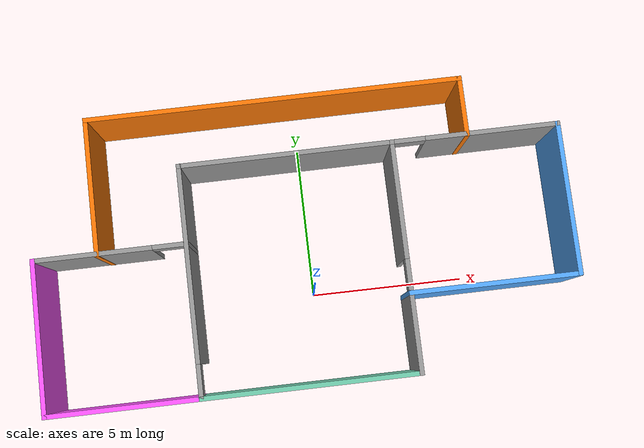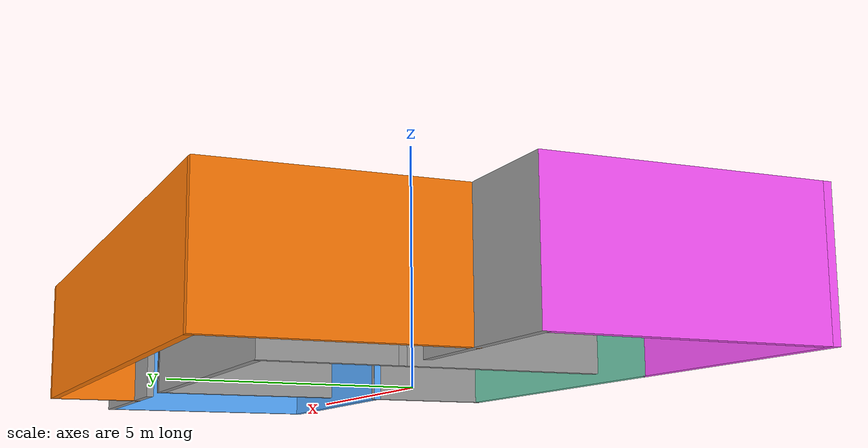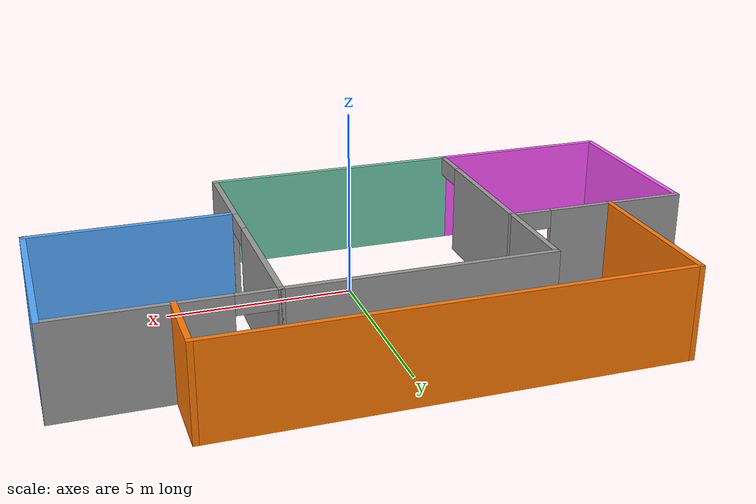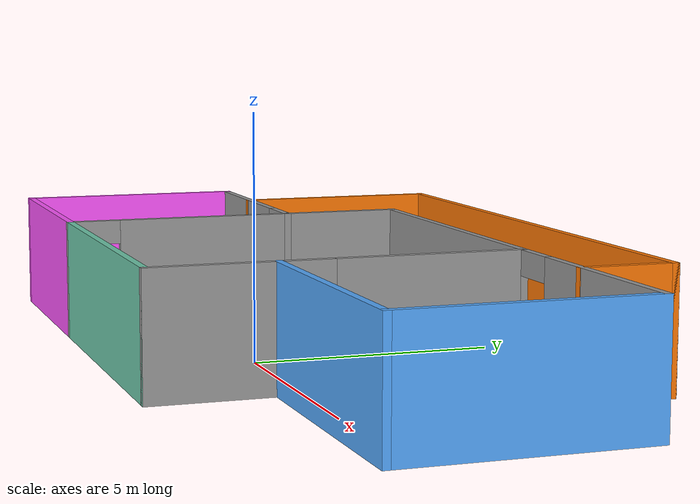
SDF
<?xml version='1.0'?>
<sdf version='1.6'>
  <model name='building'>
    <pose frame=''>-0.175 1.65386 0 0 -0 0</pose>
    <link name='Wall_0'>
      <pose frame=''>-3.675 -0.918855 0 0 -0 1.5708</pose>
      <visual name='Wall_0_Visual_0'>
        <pose frame=''>-3.67936 0 1.25 0 -0 0</pose>
        <geometry>
          <box>
            <size>0.14129 0.15 2.5</size>
          </box>
        </geometry>
        <material>
          <script>
            <uri>file://media/materials/scripts/gazebo.material</uri>
            <name>Gazebo/Grey</name>
          </script>
          <ambient>1 1 1 1</ambient>
        </material>
        <meta>
          <layer>0</layer>
        </meta>
      </visual>
      <collision name='Wall_0_Collision_0'>
        <geometry>
          <box>
            <size>0.14129 0.15 2.5</size>
          </box>
        </geometry>
        <pose frame=''>-3.67936 0 1.25 0 -0 0</pose>
      </collision>
      <visual name='Wall_0_Visual_1'>
        <pose frame=''>0.570645 0 1.25 0 -0 0</pose>
        <geometry>
          <box>
            <size>6.35871 0.15 2.5</size>
          </box>
        </geometry>
        <material>
          <script>
            <uri>file://media/materials/scripts/gazebo.material</uri>
            <name>Gazebo/Grey</name>
          </script>
          <ambient>1 1 1 1</ambient>
        </material>
        <meta>
          <layer>0</layer>
        </meta>
      </visual>
      <collision name='Wall_0_Collision_1'>
        <geometry>
          <box>
            <size>6.35871 0.15 2.5</size>
          </box>
        </geometry>
        <pose frame=''>0.570645 0 1.25 0 -0 0</pose>
      </collision>
      <visual name='Wall_0_Visual_2'>
        <pose frame=''>-3.10871 0 2.25 0 -0 0</pose>
        <geometry>
          <box>
            <size>1 0.15 0.5</size>
          </box>
        </geometry>
        <material>
          <script>
            <uri>file://media/materials/scripts/gazebo.material</uri>
            <name>Gazebo/Grey</name>
          </script>
          <ambient>1 1 1 1</ambient>
        </material>
        <meta>
          <layer>0</layer>
        </meta>
      </visual>
      <collision name='Wall_0_Collision_2'>
        <geometry>
          <box>
            <size>1 0.15 0.5</size>
          </box>
        </geometry>
        <pose frame=''>-3.10871 0 2.25 0 -0 0</pose>
      </collision>
    </link>
    <link name='Wall_1'>
      <collision name='Wall_1_Collision'>
        <geometry>
          <box>
            <size>7 0.15 2.5</size>
          </box>
        </geometry>
        <pose frame=''>0 0 1.25 0 -0 0</pose>
      </collision>
      <visual name='Wall_1_Visual'>
        <pose frame=''>0 0 1.25 0 -0 0</pose>
        <geometry>
          <box>
            <size>7 0.15 2.5</size>
          </box>
        </geometry>
        <material>
          <script>
            <uri>file://media/materials/scripts/gazebo.material</uri>
            <name>Gazebo/Grey</name>
          </script>
          <ambient>1 1 1 1</ambient>
        </material>
        <meta>
          <layer>0</layer>
        </meta>
      </visual>
      <pose frame=''>-0.25 2.75615 0 0 -0 0</pose>
    </link>
    <link name='Wall_10'>
      <collision name='Wall_10_Collision'>
        <geometry>
          <box>
            <size>5 0.15 2.5</size>
          </box>
        </geometry>
        <pose frame=''>0 0 1.25 0 -0 0</pose>
      </collision>
      <visual name='Wall_10_Visual'>
        <pose frame=''>0 0 1.25 0 -0 0</pose>
        <geometry>
          <box>
            <size>5 0.15 2.5</size>
          </box>
        </geometry>
        <material>
          <script>
            <uri>file://media/materials/scripts/gazebo.material</uri>
            <name>Gazebo/Grey</name>
          </script>
          <ambient>1 0.333333 1 1</ambient>
        </material>
        <meta>
          <layer>0</layer>
        </meta>
      </visual>
      <pose frame=''>-6.1 -4.59385 0 0 -0 3.14159</pose>
    </link>
    <link name='Wall_11'>
      <collision name='Wall_11_Collision'>
        <geometry>
          <box>
            <size>5 0.15 2.5</size>
          </box>
        </geometry>
        <pose frame=''>0 0 1.25 0 -0 0</pose>
      </collision>
      <visual name='Wall_11_Visual'>
        <pose frame=''>0 0 1.25 0 -0 0</pose>
        <geometry>
          <box>
            <size>5 0.15 2.5</size>
          </box>
        </geometry>
        <material>
          <script>
            <uri>file://media/materials/scripts/gazebo.material</uri>
            <name>Gazebo/Grey</name>
          </script>
          <ambient>1 0.333333 1 1</ambient>
        </material>
        <meta>
          <layer>0</layer>
        </meta>
      </visual>
      <pose frame=''>-8.525 -2.16886 0 0 -0 1.5708</pose>
    </link>
    <link name='Wall_12'>
      <pose frame=''>-6.1 0.256145 0 0 -0 0</pose>
      <visual name='Wall_12_Visual_0'>
        <pose frame=''>-0.57556 0 1.25 0 -0 0</pose>
        <geometry>
          <box>
            <size>3.84888 0.15 2.5</size>
          </box>
        </geometry>
        <material>
          <script>
            <uri>file://media/materials/scripts/gazebo.material</uri>
            <name>Gazebo/Grey</name>
          </script>
          <ambient>1 1 1 1</ambient>
        </material>
        <meta>
          <layer>0</layer>
        </meta>
      </visual>
      <collision name='Wall_12_Collision_0'>
        <geometry>
          <box>
            <size>3.84888 0.15 2.5</size>
          </box>
        </geometry>
        <pose frame=''>-0.57556 0 1.25 0 -0 0</pose>
      </collision>
      <visual name='Wall_12_Visual_1'>
        <pose frame=''>2.42444 0 1.25 0 -0 0</pose>
        <geometry>
          <box>
            <size>0.151119 0.15 2.5</size>
          </box>
        </geometry>
        <material>
          <script>
            <uri>file://media/materials/scripts/gazebo.material</uri>
            <name>Gazebo/Grey</name>
          </script>
          <ambient>1 1 1 1</ambient>
        </material>
        <meta>
          <layer>0</layer>
        </meta>
      </visual>
      <collision name='Wall_12_Collision_1'>
        <geometry>
          <box>
            <size>0.151119 0.15 2.5</size>
          </box>
        </geometry>
        <pose frame=''>2.42444 0 1.25 0 -0 0</pose>
      </collision>
      <visual name='Wall_12_Visual_2'>
        <pose frame=''>1.84888 0 2.25 0 -0 0</pose>
        <geometry>
          <box>
            <size>1 0.15 0.5</size>
          </box>
        </geometry>
        <material>
          <script>
            <uri>file://media/materials/scripts/gazebo.material</uri>
            <name>Gazebo/Grey</name>
          </script>
          <ambient>1 1 1 1</ambient>
        </material>
        <meta>
          <layer>0</layer>
        </meta>
      </visual>
      <collision name='Wall_12_Collision_2'>
        <geometry>
          <box>
            <size>1 0.15 0.5</size>
          </box>
        </geometry>
        <pose frame=''>1.84888 0 2.25 0 -0 0</pose>
      </collision>
    </link>
    <link name='Wall_14'>
      <collision name='Wall_14_Collision'>
        <geometry>
          <box>
            <size>4.5 0.15 2.5</size>
          </box>
        </geometry>
        <pose frame=''>0 0 1.25 0 -0 0</pose>
      </collision>
      <visual name='Wall_14_Visual'>
        <pose frame=''>0 0 1.25 0 -0 0</pose>
        <geometry>
          <box>
            <size>4.5 0.15 2.5</size>
          </box>
        </geometry>
        <material>
          <script>
            <uri>file://media/materials/scripts/gazebo.material</uri>
            <name>Gazebo/Grey</name>
          </script>
          <ambient>0.996078 0.47451 0.0196078 1</ambient>
        </material>
        <meta>
          <layer>0</layer>
        </meta>
      </visual>
      <pose frame=''>-6.50181 2.41886 0 0 -0 1.5708</pose>
    </link>
    <link name='Wall_15'>
      <collision name='Wall_15_Collision'>
        <geometry>
          <box>
            <size>12.25 0.15 2.5</size>
          </box>
        </geometry>
        <pose frame=''>0 0 1.25 0 -0 0</pose>
      </collision>
      <visual name='Wall_15_Visual'>
        <pose frame=''>0 0 1.25 0 -0 0</pose>
        <geometry>
          <box>
            <size>12.25 0.15 2.5</size>
          </box>
        </geometry>
        <material>
          <script>
            <uri>file://media/materials/scripts/gazebo.material</uri>
            <name>Gazebo/Grey</name>
          </script>
          <ambient>0.996078 0.47451 0.0196078 1</ambient>
        </material>
        <meta>
          <layer>0</layer>
        </meta>
      </visual>
      <pose frame=''>-0.451808 4.59385 0 0 -0 0</pose>
    </link>
    <link name='Wall_16'>
      <collision name='Wall_16_Collision'>
        <geometry>
          <box>
            <size>2 0.15 2.5</size>
          </box>
        </geometry>
        <pose frame=''>0 0 1.25 0 -0 0</pose>
      </collision>
      <visual name='Wall_16_Visual'>
        <pose frame=''>0 0 1.25 0 -0 0</pose>
        <geometry>
          <box>
            <size>2 0.15 2.5</size>
          </box>
        </geometry>
        <material>
          <script>
            <uri>file://media/materials/scripts/gazebo.material</uri>
            <name>Gazebo/Grey</name>
          </script>
          <ambient>0.996078 0.47451 0.0196078 1</ambient>
        </material>
        <meta>
          <layer>0</layer>
        </meta>
      </visual>
      <pose frame=''>5.59819 3.66886 0 0 0 -1.5708</pose>
    </link>
    <link name='Wall_3'>
      <collision name='Wall_3_Collision'>
        <geometry>
          <box>
            <size>7 0.15 2.5</size>
          </box>
        </geometry>
        <pose frame=''>0 0 1.25 0 -0 0</pose>
      </collision>
      <visual name='Wall_3_Visual'>
        <pose frame=''>0 0 1.25 0 -0 0</pose>
        <geometry>
          <box>
            <size>7 0.15 2.5</size>
          </box>
        </geometry>
        <material>
          <script>
            <uri>file://media/materials/scripts/gazebo.material</uri>
            <name>Gazebo/Grey</name>
          </script>
          <ambient>0.435294 0.796078 0.67451 1</ambient>
        </material>
        <meta>
          <layer>0</layer>
        </meta>
      </visual>
      <pose frame=''>-0.25 -4.59385 0 0 -0 0</pose>
    </link>
    <link name='Wall_4'>
      <pose frame=''>3.175 -0.918855 0 0 -0 1.5708</pose>
      <visual name='Wall_4_Visual_0'>
        <pose frame=''>-2.42209 0 1.25 0 -0 0</pose>
        <geometry>
          <box>
            <size>2.65581 0.15 2.5</size>
          </box>
        </geometry>
        <material>
          <script>
            <uri>file://media/materials/scripts/gazebo.material</uri>
            <name>Gazebo/Grey</name>
          </script>
          <ambient>1 1 1 1</ambient>
        </material>
        <meta>
          <layer>0</layer>
        </meta>
      </visual>
      <collision name='Wall_4_Collision_0'>
        <geometry>
          <box>
            <size>2.65581 0.15 2.5</size>
          </box>
        </geometry>
        <pose frame=''>-2.42209 0 1.25 0 -0 0</pose>
      </collision>
      <visual name='Wall_4_Visual_1'>
        <pose frame=''>1.82791 0 1.25 0 -0 0</pose>
        <geometry>
          <box>
            <size>3.84419 0.15 2.5</size>
          </box>
        </geometry>
        <material>
          <script>
            <uri>file://media/materials/scripts/gazebo.material</uri>
            <name>Gazebo/Grey</name>
          </script>
          <ambient>1 1 1 1</ambient>
        </material>
        <meta>
          <layer>0</layer>
        </meta>
      </visual>
      <collision name='Wall_4_Collision_1'>
        <geometry>
          <box>
            <size>3.84419 0.15 2.5</size>
          </box>
        </geometry>
        <pose frame=''>1.82791 0 1.25 0 -0 0</pose>
      </collision>
      <visual name='Wall_4_Visual_2'>
        <pose frame=''>-0.594186 0 2.25 0 -0 0</pose>
        <geometry>
          <box>
            <size>1 0.15 0.5</size>
          </box>
        </geometry>
        <material>
          <script>
            <uri>file://media/materials/scripts/gazebo.material</uri>
            <name>Gazebo/Grey</name>
          </script>
          <ambient>1 1 1 1</ambient>
        </material>
        <meta>
          <layer>0</layer>
        </meta>
      </visual>
      <collision name='Wall_4_Collision_2'>
        <geometry>
          <box>
            <size>1 0.15 0.5</size>
          </box>
        </geometry>
        <pose frame=''>-0.594186 0 2.25 0 -0 0</pose>
      </collision>
    </link>
    <link name='Wall_6'>
      <pose frame=''>5.85 2.75615 0 0 -0 0</pose>
      <visual name='Wall_6_Visual_0'>
        <pose frame=''>-2.67535 0 1.25 0 -0 0</pose>
        <geometry>
          <box>
            <size>0.149302 0.15 2.5</size>
          </box>
        </geometry>
        <material>
          <script>
            <uri>file://media/materials/scripts/gazebo.material</uri>
            <name>Gazebo/Grey</name>
          </script>
          <ambient>1 1 1 1</ambient>
        </material>
        <meta>
          <layer>0</layer>
        </meta>
      </visual>
      <collision name='Wall_6_Collision_0'>
        <geometry>
          <box>
            <size>0.149302 0.15 2.5</size>
          </box>
        </geometry>
        <pose frame=''>-2.67535 0 1.25 0 -0 0</pose>
      </collision>
      <visual name='Wall_6_Visual_1'>
        <pose frame=''>0.574651 0 1.25 0 -0 0</pose>
        <geometry>
          <box>
            <size>4.3507 0.15 2.5</size>
          </box>
        </geometry>
        <material>
          <script>
            <uri>file://media/materials/scripts/gazebo.material</uri>
            <name>Gazebo/Grey</name>
          </script>
          <ambient>1 1 1 1</ambient>
        </material>
        <meta>
          <layer>0</layer>
        </meta>
      </visual>
      <collision name='Wall_6_Collision_1'>
        <geometry>
          <box>
            <size>4.3507 0.15 2.5</size>
          </box>
        </geometry>
        <pose frame=''>0.574651 0 1.25 0 -0 0</pose>
      </collision>
      <visual name='Wall_6_Visual_2'>
        <pose frame=''>-2.1007 0 2.25 0 -0 0</pose>
        <geometry>
          <box>
            <size>1 0.15 0.5</size>
          </box>
        </geometry>
        <material>
          <script>
            <uri>file://media/materials/scripts/gazebo.material</uri>
            <name>Gazebo/Grey</name>
          </script>
          <ambient>1 1 1 1</ambient>
        </material>
        <meta>
          <layer>0</layer>
        </meta>
      </visual>
      <collision name='Wall_6_Collision_2'>
        <geometry>
          <box>
            <size>1 0.15 0.5</size>
          </box>
        </geometry>
        <pose frame=''>-2.1007 0 2.25 0 -0 0</pose>
      </collision>
    </link>
    <link name='Wall_7'>
      <collision name='Wall_7_Collision'>
        <geometry>
          <box>
            <size>5 0.15 2.5</size>
          </box>
        </geometry>
        <pose frame=''>0 0 1.25 0 -0 0</pose>
      </collision>
      <visual name='Wall_7_Visual'>
        <pose frame=''>0 0 1.25 0 -0 0</pose>
        <geometry>
          <box>
            <size>5 0.15 2.5</size>
          </box>
        </geometry>
        <material>
          <script>
            <uri>file://media/materials/scripts/gazebo.material</uri>
            <name>Gazebo/Grey</name>
          </script>
          <ambient>0.333333 0.666667 1 1</ambient>
        </material>
        <meta>
          <layer>0</layer>
        </meta>
      </visual>
      <pose frame=''>8.525 0.331145 0 0 0 -1.5708</pose>
    </link>
    <link name='Wall_8'>
      <collision name='Wall_8_Collision'>
        <geometry>
          <box>
            <size>5.5 0.15 2.5</size>
          </box>
        </geometry>
        <pose frame=''>0 0 1.25 0 -0 0</pose>
      </collision>
      <visual name='Wall_8_Visual'>
        <pose frame=''>0 0 1.25 0 -0 0</pose>
        <geometry>
          <box>
            <size>5.5 0.15 2.5</size>
          </box>
        </geometry>
        <material>
          <script>
            <uri>file://media/materials/scripts/gazebo.material</uri>
            <name>Gazebo/Grey</name>
          </script>
          <ambient>0.333333 0.666667 1 1</ambient>
        </material>
        <meta>
          <layer>0</layer>
        </meta>
      </visual>
      <pose frame=''>5.85 -2.09386 0 0 -0 3.14159</pose>
    </link>
    <static>1</static>
  </model>
</sdf>
